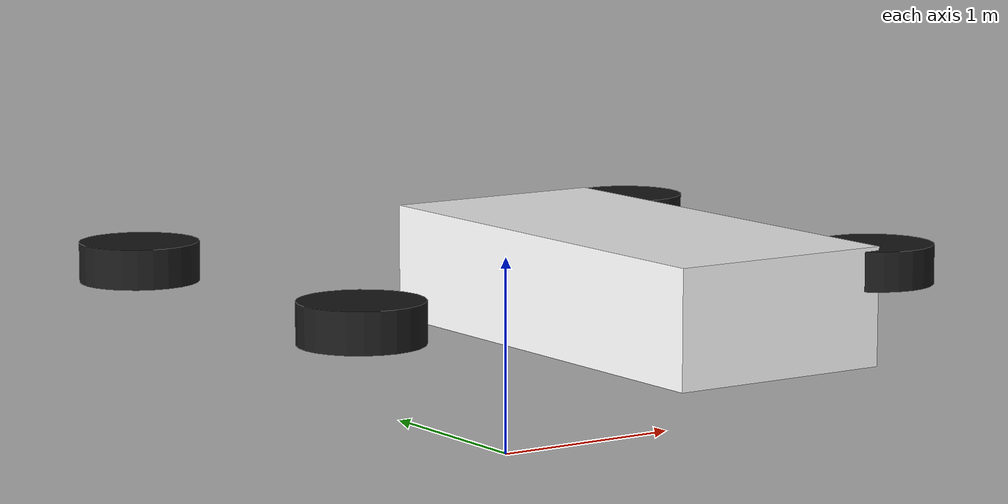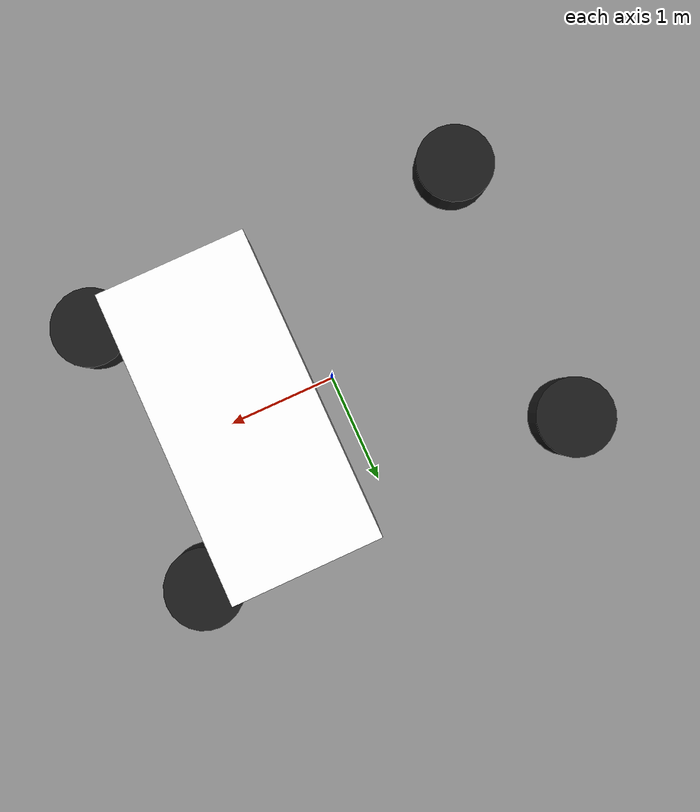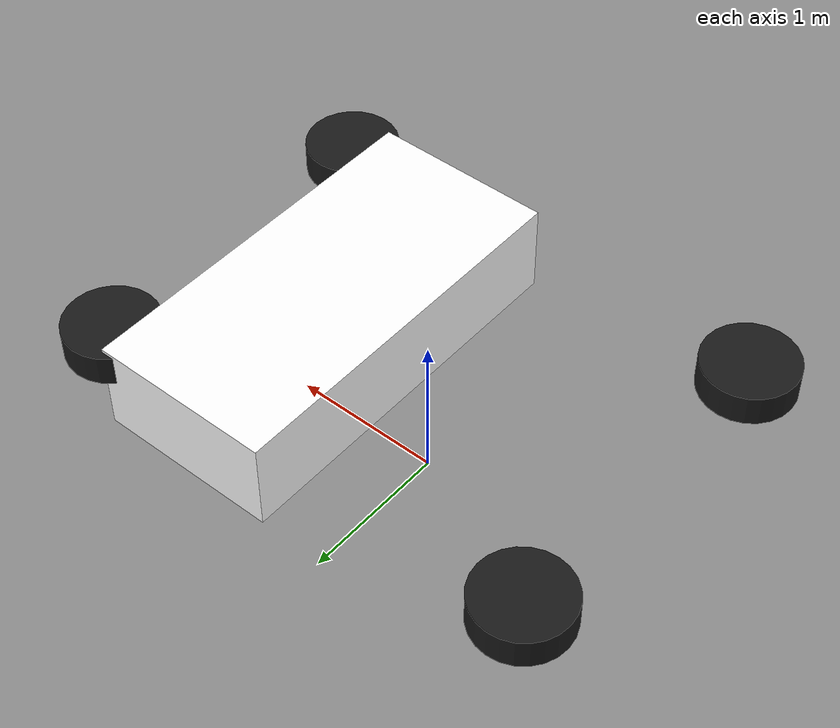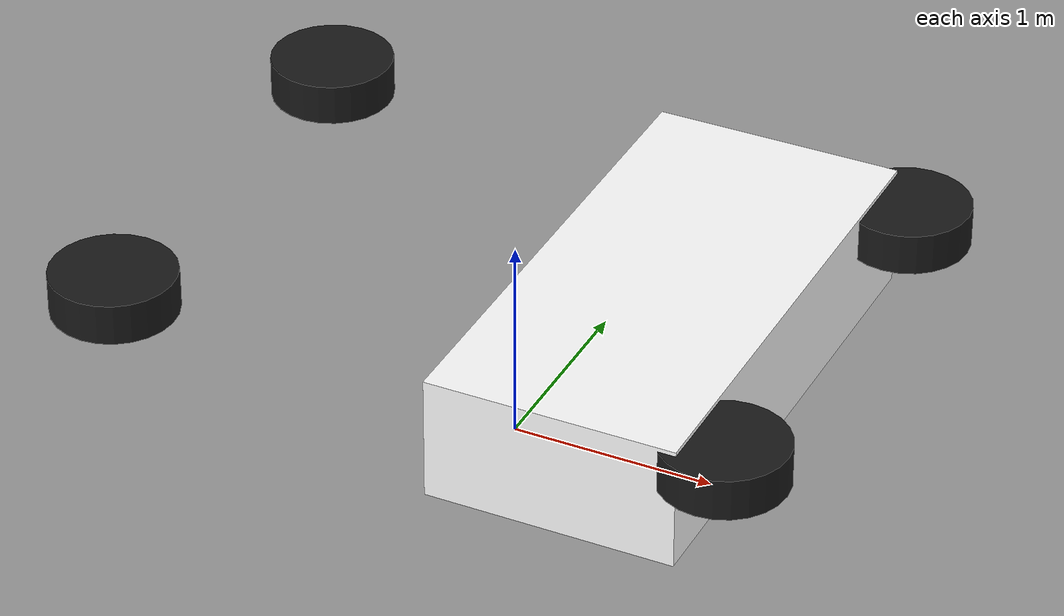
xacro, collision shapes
<?xml version="1.0"?>
<robot xmlns:xacro="http://www.ros.org/wiki/xacro" name="hydrakon_vehicle">

  <!-- Properties -->
  <xacro:property name="wheel_radius" value="0.3"/>
  <xacro:property name="wheel_width" value="0.2"/>
  <xacro:property name="wheelbase_x" value="1.5"/>
  <xacro:property name="track_width_y" value="1.05"/>
  <xacro:property name="wheel_z_offset" value="0.48"/>
  <xacro:property name="robot_z_offset" value="0.5"/>

  <!-- Base Link (Chassis) -->
  <link name="base_link">
    <visual>
      <origin xyz="3 0 0.1" rpy="0 0 ${pi/2}"/>
      <geometry>
        <mesh filename="package://hydrakon_description/meshes/ads_dv_body.stl" scale="0.0019 0.0019 0.0019"/>
      </geometry>
      <material name="team_color">
        <color rgba="1.0 1.0 1.0 1.0"/>
      </material>
    </visual>

    <collision>
      <origin xyz="${1.53/2} 0 0.3" rpy="0 0 ${pi/2}"/>
      <geometry>
        <box size="2.5 1.2 0.6"/>
      </geometry>
    </collision>
  </link>

  <link name="base_footprint"/>

  <joint name="base_footprint_joint" type="fixed">
    <parent link="base_footprint"/>
    <child link="base_link"/>
    <origin xyz="0 0 ${robot_z_offset}" rpy="0 0 0"/>
  </joint>

  <!-- Wheel Macro -->
  <xacro:macro name="wheel" params="name parent x y z steering">
    <xacro:if value="${steering}">
      <link name="${name}_steering_link">
        <inertial>
          <mass value="1.0"/>
          <inertia ixx="0.01" ixy="0" ixz="0" iyy="0.01" iyz="0" izz="0.01"/>
        </inertial>
      </link>

      <joint name="${name}_steering_joint" type="revolute">
        <parent link="${parent}"/>
        <child link="${name}_steering_link"/>
        <origin xyz="${x} ${y} ${z}" rpy="0 0 0"/>
        <axis xyz="0 0 1"/>
        <limit lower="-0.6" upper="0.6" effort="100" velocity="1.0"/>
      </joint>

      <link name="${name}_wheel">
        <visual>
          <origin xyz="0 0 0" rpy="0 0 ${pi/2}"/>
          <geometry>
            <mesh filename="package://hydrakon_description/meshes/ads_dv_wheel.stl" scale="0.0019 0.0019 0.0019"/>
          </geometry>
          <material name="black">
            <color rgba="0.1 0.1 0.1 1"/>
          </material>
        </visual>
        <collision>
          <origin xyz="0 0 0" rpy="0 0 ${pi/2}"/>
          <geometry>
            <cylinder radius="${wheel_radius}" length="${wheel_width}"/>
          </geometry>
        </collision>
      </link>

      <joint name="${name}_wheel_joint" type="continuous">
        <parent link="${name}_steering_link"/>
        <child link="${name}_wheel"/>
        <origin xyz="0 0 0" rpy="0 0 0"/>
        <axis xyz="0 1 0"/>
      </joint>
    </xacro:if>

    <xacro:unless value="${steering}">
      <link name="${name}_wheel">
        <visual>
          <origin xyz="0 0 0" rpy="0 0 ${pi/2}"/>
          <geometry>
            <mesh filename="package://hydrakon_description/meshes/ads_dv_wheel.stl" scale="0.0019 0.0019 0.0019"/>
          </geometry>
          <material name="black">
            <color rgba="0.1 0.1 0.1 1"/>
          </material>
        </visual>
        <collision>
          <origin xyz="0 0 0" rpy="0 0 ${pi/2}"/>
          <geometry>
            <cylinder radius="${wheel_radius}" length="${wheel_width}"/>
          </geometry>
        </collision>
      </link>

      <joint name="${name}_wheel_joint" type="continuous">
        <parent link="${parent}"/>
        <child link="${name}_wheel"/>
        <origin xyz="${x} ${y} ${z}" rpy="0 0 0"/>
        <axis xyz="0 1 0"/>
      </joint>
    </xacro:unless>
  </xacro:macro>

  <xacro:wheel name="front_left" parent="base_link" x="${wheelbase_x}" y="${track_width_y}" z="${wheel_z_offset}" steering="true"/>
  <xacro:wheel name="front_right" parent="base_link" x="${wheelbase_x}" y="-${track_width_y}" z="${wheel_z_offset}" steering="true"/>

  <xacro:wheel name="rear_left" parent="base_link" x="-${wheelbase_x}" y="${track_width_y}" z="${wheel_z_offset}" steering="false"/>
  <xacro:wheel name="rear_right" parent="base_link" x="-${wheelbase_x}" y="-${track_width_y}" z="${wheel_z_offset}" steering="false"/>

</robot>
